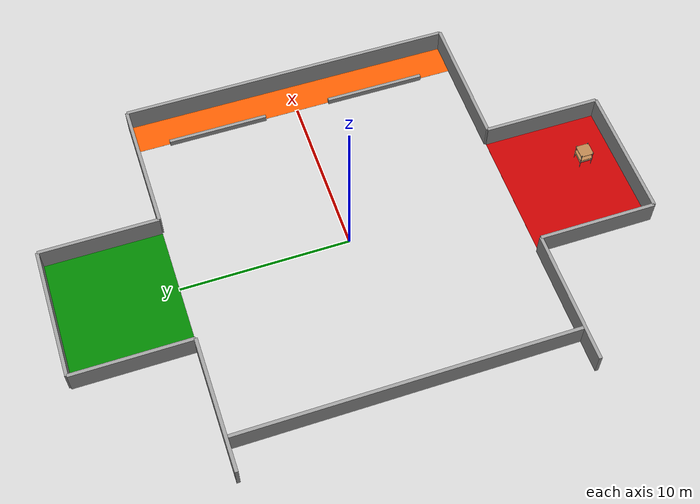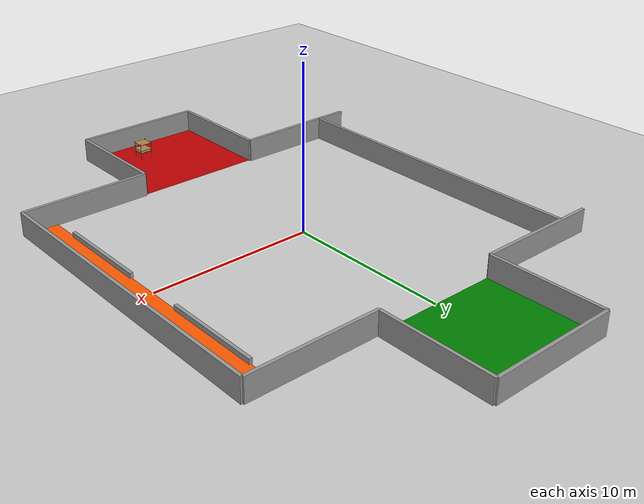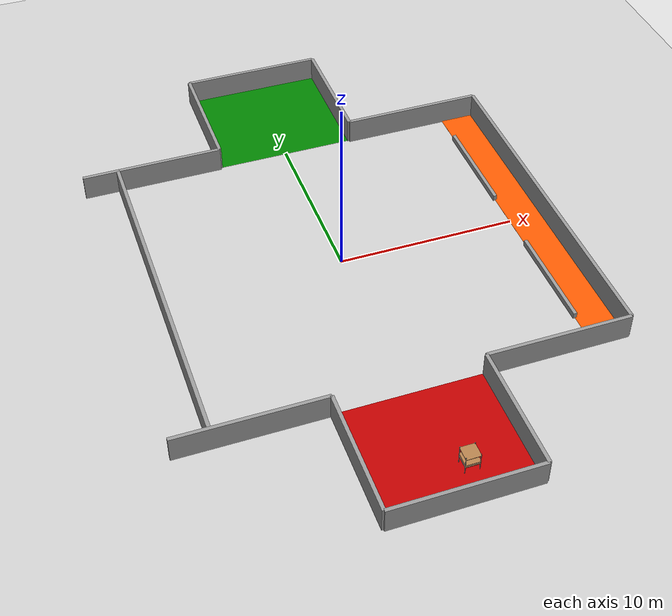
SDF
<sdf version="1.6">
 <world name="default">
  <include><uri>model://ground_plane</uri></include>
  <include><uri>model://sun</uri></include>
  <scene><shadows>false</shadows></scene>
  <physics type="ode">
   <real_time_update_rate>1000.0</real_time_update_rate>
   <max_step_size>0.001</max_step_size>
   <real_time_factor>1</real_time_factor>
   <ode>
    <solver>
     <type>quick</type>
     <iters>150</iters>
     <precon_iters>0</precon_iters>
     <sor>1.400000</sor>
     <use_dynamic_moi_rescaling>1</use_dynamic_moi_rescaling>
    </solver>
    <constraints>
     <cfm>0.00001</cfm>
     <erp>0.2</erp>
     <contact_max_correcting_vel>2000.000000</contact_max_correcting_vel>
     <contact_surface_layer>0.01000</contact_surface_layer>
    </constraints>
   </ode>
  </physics>
  <include>
   <uri>model://warehouse_pallet_small</uri>
   <name>warehouse_pallet_small_0</name>
   <pose>1 -15 0 0 0 0</pose>
  </include>
  <include><name>warehouse_walls</name><uri>model://warehouse_walls</uri></include>
 </world>
</sdf>

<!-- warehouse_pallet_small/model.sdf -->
<sdf version='1.7'>
  <model name='warehouse_pallet'>
    <link name='warehouse_pallet::link'>
      <pose>0 0 -0 0 -0 1.57</pose>
      <self_collide>0</self_collide>
      <inertial>
        <pose>0 0 0 0 -0 0</pose>
        <inertia>
          <ixx>0.0267042</ixx>
          <ixy>0</ixy>
          <ixz>0</ixz>
          <iyy>0.0937875</iyy>
          <iyz>0</iyz>
          <izz>0.120417</izz>
        </inertia>
        <mass>0.1</mass>
      </inertial>
      <enable_wind>0</enable_wind>
      <kinematic>0</kinematic>
      <gravity>1</gravity>
      <visual name='holding1_visual'>
        <pose>0 0.39 0.45 0 -0 0</pose>
        <geometry>
          <box>
            <size>0.8 0.02 0.05</size>
          </box>
        </geometry>
        <material>
          <script>
            <uri>file://media/materials/scripts/gazebo.material</uri>
            <name>Gazebo/Grey</name>
          </script>
          <shader type='pixel'>
            <normal_map>__default__</normal_map>
          </shader>
          <ambient>0.3 0.3 0.3 1</ambient>
          <diffuse>0.7 0.7 0.7 1</diffuse>
          <specular>0.01 0.01 0.01 1</specular>
          <emissive>0 0 0 1</emissive>
        </material>
        <transparency>0</transparency>
        <cast_shadows>1</cast_shadows>
      </visual>
      <visual name='front_left_leg'>
        <pose>0.35 0.38 0.5 0 -0 0</pose>
        <geometry>
          <cylinder>
            <radius>0.02</radius>
            <length>1.2</length>
          </cylinder>
        </geometry>
        <material>
          <script>
            <uri>file://media/materials/scripts/gazebo.material</uri>
            <name>Gazebo/Grey</name>
          </script>
          <shader type='pixel'>
            <normal_map>__default__</normal_map>
          </shader>
          <ambient>0.3 0.3 0.3 1</ambient>
          <diffuse>0.7 0.7 0.7 1</diffuse>
          <specular>0.01 0.01 0.01 1</specular>
          <emissive>0 0 0 1</emissive>
        </material>
        <transparency>0</transparency>
        <cast_shadows>1</cast_shadows>
      </visual>
      <visual name='front_right_leg'>
        <pose>0.35 -0.38 0.5 0 -0 0</pose>
        <geometry>
          <cylinder>
            <radius>0.02</radius>
            <length>1.2</length>
          </cylinder>
        </geometry>
        <material>
          <script>
            <uri>file://media/materials/scripts/gazebo.material</uri>
            <name>Gazebo/Grey</name>
          </script>
          <shader type='pixel'>
            <normal_map>__default__</normal_map>
          </shader>
          <ambient>0.3 0.3 0.3 1</ambient>
          <diffuse>0.7 0.7 0.7 1</diffuse>
          <specular>0.01 0.01 0.01 1</specular>
          <emissive>0 0 0 1</emissive>
        </material>
        <transparency>0</transparency>
        <cast_shadows>1</cast_shadows>
      </visual>
      <visual name='back_right_leg'>
        <pose>-0.35 -0.38 0.5 0 -0 0</pose>
        <geometry>
          <cylinder>
            <radius>0.02</radius>
            <length>1.2</length>
          </cylinder>
        </geometry>
        <material>
          <script>
            <uri>file://media/materials/scripts/gazebo.material</uri>
            <name>Gazebo/Grey</name>
          </script>
          <shader type='pixel'>
            <normal_map>__default__</normal_map>
          </shader>
          <ambient>0.3 0.3 0.3 1</ambient>
          <diffuse>0.7 0.7 0.7 1</diffuse>
          <specular>0.01 0.01 0.01 1</specular>
          <emissive>0 0 0 1</emissive>
        </material>
        <transparency>0</transparency>
        <cast_shadows>1</cast_shadows>
      </visual>
      <visual name='back_left_leg'>
        <pose>-0.35 0.38 0.5 0 -0 0</pose>
        <geometry>
          <cylinder>
            <radius>0.02</radius>
            <length>1.2</length>
          </cylinder>
        </geometry>
        <material>
          <script>
            <uri>file://media/materials/scripts/gazebo.material</uri>
            <name>Gazebo/Grey</name>
          </script>
          <shader type='pixel'>
            <normal_map>__default__</normal_map>
          </shader>
          <ambient>0.3 0.3 0.3 1</ambient>
          <diffuse>0.7 0.7 0.7 1</diffuse>
          <specular>0.01 0.01 0.01 1</specular>
          <emissive>0 0 0 1</emissive>
        </material>
        <transparency>0</transparency>
        <cast_shadows>1</cast_shadows>
      </visual>
      <visual name='visual1'>
        <pose>0 0 0.45 0 -0 0</pose>
        <geometry>
          <box>
            <size>0.8 0.8 0.03</size>
          </box>
        </geometry>
        <material>
          <script>
            <uri>file://media/materials/scripts/gazebo.material</uri>
            <name>Gazebo/Wood</name>
          </script>
          <shader type='pixel'>
            <normal_map>__default__</normal_map>
          </shader>
          <ambient>1 1 1 1</ambient>
          <diffuse>1 1 1 1</diffuse>
          <specular>0.2 0.2 0.2 1</specular>
          <emissive>0 0 0 1</emissive>
        </material>
        <transparency>0</transparency>
        <cast_shadows>1</cast_shadows>
      </visual>
      <visual name='holding2_visual'>
        <pose>0 -0.39 0.45 0 -0 0</pose>
        <geometry>
          <box>
            <size>0.4 0.02 0.05</size>
          </box>
        </geometry>
        <material>
          <script>
            <uri>file://media/materials/scripts/gazebo.material</uri>
            <name>Gazebo/Grey</name>
          </script>
          <shader type='pixel'>
            <normal_map>__default__</normal_map>
          </shader>
          <ambient>0.3 0.3 0.3 1</ambient>
          <diffuse>0.7 0.7 0.7 1</diffuse>
          <specular>0.01 0.01 0.01 1</specular>
          <emissive>0 0 0 1</emissive>
        </material>
        <transparency>0</transparency>
        <cast_shadows>1</cast_shadows>
      </visual>
      <visual name='holding3_visual'>
        <pose>0.36 0 0.45 0 -0 1.57</pose>
        <geometry>
          <box>
            <size>0.4 0.02 0.05</size>
          </box>
        </geometry>
        <material>
          <script>
            <uri>file://media/materials/scripts/gazebo.material</uri>
            <name>Gazebo/Grey</name>
          </script>
          <shader type='pixel'>
            <normal_map>__default__</normal_map>
          </shader>
          <ambient>0.3 0.3 0.3 1</ambient>
          <diffuse>0.7 0.7 0.7 1</diffuse>
          <specular>0.01 0.01 0.01 1</specular>
          <emissive>0 0 0 1</emissive>
        </material>
        <transparency>0</transparency>
        <cast_shadows>1</cast_shadows>
      </visual>
      <visual name='holding4_visual'>
        <pose>-0.36 0 0.45 0 -0 1.57</pose>
        <geometry>
          <box>
            <size>0.8 0.02 0.05</size>
          </box>
        </geometry>
        <material>
          <script>
            <uri>file://media/materials/scripts/gazebo.material</uri>
            <name>Gazebo/Grey</name>
          </script>
          <shader type='pixel'>
            <normal_map>__default__</normal_map>
          </shader>
          <ambient>0.3 0.3 0.3 1</ambient>
          <diffuse>0.7 0.7 0.7 1</diffuse>
          <specular>0.01 0.01 0.01 1</specular>
          <emissive>0 0 0 1</emissive>
        </material>
        <transparency>0</transparency>
        <cast_shadows>1</cast_shadows>
      </visual>
      <visual name='visual2'>
        <pose>0 0 0.6 0 -0 0</pose>
        <geometry>
          <box>
            <size>0.8 0.8 0.03</size>
          </box>
        </geometry>
        <material>
          <script>
            <uri>file://media/materials/scripts/gazebo.material</uri>
            <name>Gazebo/Wood</name>
          </script>
          <shader type='pixel'>
            <normal_map>__default__</normal_map>
          </shader>
          <ambient>1 1 1 1</ambient>
          <diffuse>1 1 1 1</diffuse>
          <specular>0.2 0.2 0.2 1</specular>
          <emissive>0 0 0 1</emissive>
        </material>
        <transparency>0</transparency>
        <cast_shadows>1</cast_shadows>
      </visual>
      <visual name='visual3'>
        <pose>0 0 1 0 -0 0</pose>
        <geometry>
          <box>
            <size>0.8 0.8 0.03</size>
          </box>
        </geometry>
        <material>
          <script>
            <uri>file://media/materials/scripts/gazebo.material</uri>
            <name>Gazebo/Wood</name>
          </script>
          <shader type='pixel'>
            <normal_map>__default__</normal_map>
          </shader>
          <ambient>1 1 1 1</ambient>
          <diffuse>1 1 1 1</diffuse>
          <specular>0.2 0.2 0.2 1</specular>
          <emissive>0 0 0 1</emissive>
        </material>
        <transparency>0</transparency>
        <cast_shadows>1</cast_shadows>
      </visual>
      <collision name='surface1'>
        <laser_retro>0</laser_retro>
        <max_contacts>10</max_contacts>
        <pose>0 0 0.45 0 -0 0</pose>
        <geometry>
          <box>
            <size>0.8 0.8 0.03</size>
          </box>
        </geometry>
        <surface>
          <friction>
            <ode>
              <mu>20</mu>
              <mu2>20</mu2>
              <fdir1>0 0 0</fdir1>
              <slip1>0</slip1>
              <slip2>0</slip2>
            </ode>
            <torsional>
              <coefficient>1</coefficient>
              <patch_radius>0</patch_radius>
              <surface_radius>0</surface_radius>
              <use_patch_radius>1</use_patch_radius>
              <ode>
                <slip>0</slip>
              </ode>
            </torsional>
          </friction>
          <bounce>
            <restitution_coefficient>0</restitution_coefficient>
            <threshold>1e+06</threshold>
          </bounce>
          <contact>
            <collide_without_contact>0</collide_without_contact>
            <collide_without_contact_bitmask>1</collide_without_contact_bitmask>
            <collide_bitmask>1</collide_bitmask>
            <ode>
              <soft_cfm>0</soft_cfm>
              <soft_erp>0.2</soft_erp>
              <kp>1e+13</kp>
              <kd>1</kd>
              <max_vel>0.01</max_vel>
              <min_depth>0</min_depth>
            </ode>
            <bullet>
              <split_impulse>1</split_impulse>
              <split_impulse_penetration_threshold>-0.01</split_impulse_penetration_threshold>
              <soft_cfm>0</soft_cfm>
              <soft_erp>0.2</soft_erp>
              <kp>1e+13</kp>
              <kd>1</kd>
            </bullet>
          </contact>
        </surface>
      </collision>
      <collision name='holding1_collision'>
        <laser_retro>0</laser_retro>
        <max_contacts>10</max_contacts>
        <pose>0 0.39 0.45 0 -0 0</pose>
        <geometry>
          <box>
            <size>0.8 0.02 0.05</size>
          </box>
        </geometry>
        <surface>
          <friction>
            <ode>
              <mu>1e+09</mu>
              <mu2>1e+09</mu2>
              <fdir1>0 0 0</fdir1>
              <slip1>0</slip1>
              <slip2>0</slip2>
            </ode>
            <torsional>
              <coefficient>1</coefficient>
              <patch_radius>0</patch_radius>
              <surface_radius>0</surface_radius>
              <use_patch_radius>1</use_patch_radius>
              <ode>
                <slip>0</slip>
              </ode>
            </torsional>
          </friction>
          <bounce>
            <restitution_coefficient>0</restitution_coefficient>
            <threshold>1e+06</threshold>
          </bounce>
          <contact>
            <collide_without_contact>0</collide_without_contact>
            <collide_without_contact_bitmask>1</collide_without_contact_bitmask>
            <collide_bitmask>1</collide_bitmask>
            <ode>
              <soft_cfm>0</soft_cfm>
              <soft_erp>0.2</soft_erp>
              <kp>1e+13</kp>
              <kd>1</kd>
              <max_vel>0.01</max_vel>
              <min_depth>0</min_depth>
            </ode>
            <bullet>
              <split_impulse>1</split_impulse>
              <split_impulse_penetration_threshold>-0.01</split_impulse_penetration_threshold>
              <soft_cfm>0</soft_cfm>
              <soft_erp>0.2</soft_erp>
              <kp>1e+13</kp>
              <kd>1</kd>
            </bullet>
          </contact>
        </surface>
      </collision>
      <collision name='holding2_collision'>
        <laser_retro>0</laser_retro>
        <max_contacts>10</max_contacts>
        <pose>0 -0.39 0.45 0 -0 0</pose>
        <geometry>
          <box>
            <size>0.8 0.02 0.05</size>
          </box>
        </geometry>
        <surface>
          <friction>
            <ode>
              <mu>1e+09</mu>
              <mu2>1e+09</mu2>
              <fdir1>0 0 0</fdir1>
              <slip1>0</slip1>
              <slip2>0</slip2>
            </ode>
            <torsional>
              <coefficient>1</coefficient>
              <patch_radius>0</patch_radius>
              <surface_radius>0</surface_radius>
              <use_patch_radius>1</use_patch_radius>
              <ode>
                <slip>0</slip>
              </ode>
            </torsional>
          </friction>
          <bounce>
            <restitution_coefficient>0</restitution_coefficient>
            <threshold>1e+06</threshold>
          </bounce>
          <contact>
            <collide_without_contact>0</collide_without_contact>
            <collide_without_contact_bitmask>1</collide_without_contact_bitmask>
            <collide_bitmask>1</collide_bitmask>
            <ode>
              <soft_cfm>0</soft_cfm>
              <soft_erp>0.2</soft_erp>
              <kp>1e+13</kp>
              <kd>1</kd>
              <max_vel>0.01</max_vel>
              <min_depth>0</min_depth>
            </ode>
            <bullet>
              <split_impulse>1</split_impulse>
              <split_impulse_penetration_threshold>-0.01</split_impulse_penetration_threshold>
              <soft_cfm>0</soft_cfm>
              <soft_erp>0.2</soft_erp>
              <kp>1e+13</kp>
              <kd>1</kd>
            </bullet>
          </contact>
        </surface>
      </collision>
      <collision name='holding3_collision'>
        <laser_retro>0</laser_retro>
        <max_contacts>10</max_contacts>
        <pose>0.36 0 0.45 0 -0 1.57</pose>
        <geometry>
          <box>
            <size>0.8 0.02 0.05</size>
          </box>
        </geometry>
        <surface>
          <friction>
            <ode>
              <mu>1e+09</mu>
              <mu2>1e+09</mu2>
              <fdir1>0 0 0</fdir1>
              <slip1>0</slip1>
              <slip2>0</slip2>
            </ode>
            <torsional>
              <coefficient>1</coefficient>
              <patch_radius>0</patch_radius>
              <surface_radius>0</surface_radius>
              <use_patch_radius>1</use_patch_radius>
              <ode>
                <slip>0</slip>
              </ode>
            </torsional>
          </friction>
          <bounce>
            <restitution_coefficient>0</restitution_coefficient>
            <threshold>1e+06</threshold>
          </bounce>
          <contact>
            <collide_without_contact>0</collide_without_contact>
            <collide_without_contact_bitmask>1</collide_without_contact_bitmask>
            <collide_bitmask>1</collide_bitmask>
            <ode>
              <soft_cfm>0</soft_cfm>
              <soft_erp>0.2</soft_erp>
              <kp>1e+13</kp>
              <kd>1</kd>
              <max_vel>0.01</max_vel>
              <min_depth>0</min_depth>
            </ode>
            <bullet>
              <split_impulse>1</split_impulse>
              <split_impulse_penetration_threshold>-0.01</split_impulse_penetration_threshold>
              <soft_cfm>0</soft_cfm>
              <soft_erp>0.2</soft_erp>
              <kp>1e+13</kp>
              <kd>1</kd>
            </bullet>
          </contact>
        </surface>
      </collision>
      <collision name='holding4_collision'>
        <laser_retro>0</laser_retro>
        <max_contacts>10</max_contacts>
        <pose>-0.36 0 0.45 0 -0 1.57</pose>
        <geometry>
          <box>
            <size>0.8 0.02 0.05</size>
          </box>
        </geometry>
        <surface>
          <friction>
            <ode>
              <mu>1e+09</mu>
              <mu2>1e+09</mu2>
              <fdir1>0 0 0</fdir1>
              <slip1>0</slip1>
              <slip2>0</slip2>
            </ode>
            <torsional>
              <coefficient>1</coefficient>
              <patch_radius>0</patch_radius>
              <surface_radius>0</surface_radius>
              <use_patch_radius>1</use_patch_radius>
              <ode>
                <slip>0</slip>
              </ode>
            </torsional>
          </friction>
          <bounce>
            <restitution_coefficient>0</restitution_coefficient>
            <threshold>1e+06</threshold>
          </bounce>
          <contact>
            <collide_without_contact>0</collide_without_contact>
            <collide_without_contact_bitmask>1</collide_without_contact_bitmask>
            <collide_bitmask>1</collide_bitmask>
            <ode>
              <soft_cfm>0</soft_cfm>
              <soft_erp>0.2</soft_erp>
              <kp>1e+13</kp>
              <kd>1</kd>
              <max_vel>0.01</max_vel>
              <min_depth>0</min_depth>
            </ode>
            <bullet>
              <split_impulse>1</split_impulse>
              <split_impulse_penetration_threshold>-0.01</split_impulse_penetration_threshold>
              <soft_cfm>0</soft_cfm>
              <soft_erp>0.2</soft_erp>
              <kp>1e+13</kp>
              <kd>1</kd>
            </bullet>
          </contact>
        </surface>
      </collision>
      <collision name='surface3'>
        <laser_retro>0</laser_retro>
        <max_contacts>10</max_contacts>
        <pose>0 0 1 0 -0 0</pose>
        <geometry>
          <box>
            <size>0.8 0.8 0.03</size>
          </box>
        </geometry>
        <surface>
          <friction>
            <ode>
              <mu>2.5</mu>
              <mu2>2.5</mu2>
              <fdir1>0 0 0</fdir1>
              <slip1>0</slip1>
              <slip2>0</slip2>
            </ode>
            <torsional>
              <coefficient>1</coefficient>
              <patch_radius>0</patch_radius>
              <surface_radius>0</surface_radius>
              <use_patch_radius>1</use_patch_radius>
              <ode>
                <slip>0</slip>
              </ode>
            </torsional>
          </friction>
          <bounce>
            <restitution_coefficient>0</restitution_coefficient>
            <threshold>1e+06</threshold>
          </bounce>
          <contact>
            <collide_without_contact>0</collide_without_contact>
            <collide_without_contact_bitmask>1</collide_without_contact_bitmask>
            <collide_bitmask>1</collide_bitmask>
            <ode>
              <soft_cfm>0</soft_cfm>
              <soft_erp>0.2</soft_erp>
              <kp>1e+13</kp>
              <kd>1</kd>
              <max_vel>0.01</max_vel>
              <min_depth>0</min_depth>
            </ode>
            <bullet>
              <split_impulse>1</split_impulse>
              <split_impulse_penetration_threshold>-0.01</split_impulse_penetration_threshold>
              <soft_cfm>0</soft_cfm>
              <soft_erp>0.2</soft_erp>
              <kp>1e+13</kp>
              <kd>1</kd>
            </bullet>
          </contact>
        </surface>
      </collision>
      <collision name='surface2'>
        <laser_retro>0</laser_retro>
        <max_contacts>10</max_contacts>
        <pose>0 0 0.6 0 -0 0</pose>
        <geometry>
          <box>
            <size>0.8 0.8 0.03</size>
          </box>
        </geometry>
        <surface>
          <friction>
            <ode>
              <mu>2.5</mu>
              <mu2>2.5</mu2>
              <fdir1>0 0 0</fdir1>
              <slip1>0</slip1>
              <slip2>0</slip2>
            </ode>
            <torsional>
              <coefficient>1</coefficient>
              <patch_radius>0</patch_radius>
              <surface_radius>0</surface_radius>
              <use_patch_radius>1</use_patch_radius>
              <ode>
                <slip>0</slip>
              </ode>
            </torsional>
          </friction>
          <bounce>
            <restitution_coefficient>0</restitution_coefficient>
            <threshold>1e+06</threshold>
          </bounce>
          <contact>
            <collide_without_contact>0</collide_without_contact>
            <collide_without_contact_bitmask>1</collide_without_contact_bitmask>
            <collide_bitmask>1</collide_bitmask>
            <ode>
              <soft_cfm>0</soft_cfm>
              <soft_erp>0.2</soft_erp>
              <kp>1e+13</kp>
              <kd>1</kd>
              <max_vel>0.01</max_vel>
              <min_depth>0</min_depth>
            </ode>
            <bullet>
              <split_impulse>1</split_impulse>
              <split_impulse_penetration_threshold>-0.01</split_impulse_penetration_threshold>
              <soft_cfm>0</soft_cfm>
              <soft_erp>0.2</soft_erp>
              <kp>1e+13</kp>
              <kd>1</kd>
            </bullet>
          </contact>
        </surface>
      </collision>
      <collision name='front_right_leg'>
        <laser_retro>0</laser_retro>
        <max_contacts>10</max_contacts>
        <pose>0.35 -0.38 0.5 0 -0 0</pose>
        <geometry>
          <cylinder>
            <radius>0.02</radius>
            <length>1</length>
          </cylinder>
        </geometry>
        <surface>
          <friction>
            <ode>
              <mu>0.1</mu>
              <mu2>0.1</mu2>
              <fdir1>0 0 0</fdir1>
              <slip1>0</slip1>
              <slip2>0</slip2>
            </ode>
            <torsional>
              <coefficient>1</coefficient>
              <patch_radius>0</patch_radius>
              <surface_radius>0</surface_radius>
              <use_patch_radius>1</use_patch_radius>
              <ode>
                <slip>0</slip>
              </ode>
            </torsional>
          </friction>
          <bounce>
            <restitution_coefficient>0</restitution_coefficient>
            <threshold>1e+06</threshold>
          </bounce>
          <contact>
            <collide_without_contact>0</collide_without_contact>
            <collide_without_contact_bitmask>1</collide_without_contact_bitmask>
            <collide_bitmask>1</collide_bitmask>
            <ode>
              <soft_cfm>0</soft_cfm>
              <soft_erp>0.2</soft_erp>
              <kp>1e+13</kp>
              <kd>1</kd>
              <max_vel>0.01</max_vel>
              <min_depth>0</min_depth>
            </ode>
            <bullet>
              <split_impulse>1</split_impulse>
              <split_impulse_penetration_threshold>-0.01</split_impulse_penetration_threshold>
              <soft_cfm>0</soft_cfm>
              <soft_erp>0.2</soft_erp>
              <kp>1e+13</kp>
              <kd>1</kd>
            </bullet>
          </contact>
        </surface>
      </collision>
      <collision name='back_right_leg'>
        <laser_retro>0</laser_retro>
        <max_contacts>10</max_contacts>
        <pose>-0.35 -0.38 0.5 0 -0 0</pose>
        <geometry>
          <cylinder>
            <radius>0.02</radius>
            <length>1.2</length>
          </cylinder>
        </geometry>
        <surface>
          <friction>
            <ode>
              <mu>0.1</mu>
              <mu2>0.1</mu2>
              <fdir1>0 0 0</fdir1>
              <slip1>0</slip1>
              <slip2>0</slip2>
            </ode>
            <torsional>
              <coefficient>1</coefficient>
              <patch_radius>0</patch_radius>
              <surface_radius>0</surface_radius>
              <use_patch_radius>1</use_patch_radius>
              <ode>
                <slip>0</slip>
              </ode>
            </torsional>
          </friction>
          <bounce>
            <restitution_coefficient>0</restitution_coefficient>
            <threshold>1e+06</threshold>
          </bounce>
          <contact>
            <collide_without_contact>0</collide_without_contact>
            <collide_without_contact_bitmask>1</collide_without_contact_bitmask>
            <collide_bitmask>1</collide_bitmask>
            <ode>
              <soft_cfm>0</soft_cfm>
              <soft_erp>0.2</soft_erp>
              <kp>1e+13</kp>
              <kd>1</kd>
              <max_vel>0.01</max_vel>
              <min_depth>0</min_depth>
            </ode>
            <bullet>
              <split_impulse>1</split_impulse>
              <split_impulse_penetration_threshold>-0.01</split_impulse_penetration_threshold>
              <soft_cfm>0</soft_cfm>
              <soft_erp>0.2</soft_erp>
              <kp>1e+13</kp>
              <kd>1</kd>
            </bullet>
          </contact>
        </surface>
      </collision>
      <collision name='front_left_leg'>
        <laser_retro>0</laser_retro>
        <max_contacts>10</max_contacts>
        <pose>0.35 0.38 0.5 0 -0 0</pose>
        <geometry>
          <cylinder>
            <radius>0.02</radius>
            <length>1.2</length>
          </cylinder>
        </geometry>
        <surface>
          <friction>
            <ode>
              <mu>0.1</mu>
              <mu2>0.1</mu2>
              <fdir1>0 0 0</fdir1>
              <slip1>0</slip1>
              <slip2>0</slip2>
            </ode>
            <torsional>
              <coefficient>1</coefficient>
              <patch_radius>0</patch_radius>
              <surface_radius>0</surface_radius>
              <use_patch_radius>1</use_patch_radius>
              <ode>
                <slip>0</slip>
              </ode>
            </torsional>
          </friction>
          <bounce>
            <restitution_coefficient>0</restitution_coefficient>
            <threshold>1e+06</threshold>
          </bounce>
          <contact>
            <collide_without_contact>0</collide_without_contact>
            <collide_without_contact_bitmask>1</collide_without_contact_bitmask>
            <collide_bitmask>1</collide_bitmask>
            <ode>
              <soft_cfm>0</soft_cfm>
              <soft_erp>0.2</soft_erp>
              <kp>1e+13</kp>
              <kd>1</kd>
              <max_vel>0.01</max_vel>
              <min_depth>0</min_depth>
            </ode>
            <bullet>
              <split_impulse>1</split_impulse>
              <split_impulse_penetration_threshold>-0.01</split_impulse_penetration_threshold>
              <soft_cfm>0</soft_cfm>
              <soft_erp>0.2</soft_erp>
              <kp>1e+13</kp>
              <kd>1</kd>
            </bullet>
          </contact>
        </surface>
      </collision>
      <collision name='back_left_leg'>
        <laser_retro>0</laser_retro>
        <max_contacts>10</max_contacts>
        <pose>-0.35 0.38 0.5 0 -0 0</pose>
        <geometry>
          <cylinder>
            <radius>0.02</radius>
            <length>1.2</length>
          </cylinder>
        </geometry>
        <surface>
          <friction>
            <ode>
              <mu>0.1</mu>
              <mu2>0.1</mu2>
              <fdir1>0 0 0</fdir1>
              <slip1>0</slip1>
              <slip2>0</slip2>
            </ode>
            <torsional>
              <coefficient>1</coefficient>
              <patch_radius>0</patch_radius>
              <surface_radius>0</surface_radius>
              <use_patch_radius>1</use_patch_radius>
              <ode>
                <slip>0</slip>
              </ode>
            </torsional>
          </friction>
          <bounce>
            <restitution_coefficient>0</restitution_coefficient>
            <threshold>1e+06</threshold>
          </bounce>
          <contact>
            <collide_without_contact>0</collide_without_contact>
            <collide_without_contact_bitmask>1</collide_without_contact_bitmask>
            <collide_bitmask>1</collide_bitmask>
            <ode>
              <soft_cfm>0</soft_cfm>
              <soft_erp>0.2</soft_erp>
              <kp>1e+13</kp>
              <kd>1</kd>
              <max_vel>0.01</max_vel>
              <min_depth>0</min_depth>
            </ode>
            <bullet>
              <split_impulse>1</split_impulse>
              <split_impulse_penetration_threshold>-0.01</split_impulse_penetration_threshold>
              <soft_cfm>0</soft_cfm>
              <soft_erp>0.2</soft_erp>
              <kp>1e+13</kp>
              <kd>1</kd>
            </bullet>
          </contact>
        </surface>
      </collision>
    </link>
    <static>0</static>
    <allow_auto_disable>1</allow_auto_disable>
  </model>
</sdf>

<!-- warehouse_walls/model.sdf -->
<sdf version="1.5">
  <model name="warehouse_walls">
    <static>true</static>

<!-- Wall 1 -->
    <link name="wall1_link">
      <name>wall1_link</name>
      <pose>-10 0 0 0 0 1.57</pose>
      <collision name="collision">
        <geometry>
          <box>
            <size>20 0.2 2.8</size>
          </box>
        </geometry>
      </collision>
      <visual name="wall1_visual">
        <cast_shadows>false</cast_shadows>
        <geometry>
          <box>
            <size>20 0.2 2.8</size>
          </box>
        </geometry>
        <material>
          <script>
            <uri>model://grey_wall/materials/scripts</uri>
            <uri>model://grey_wall/materials/textures</uri>
            <name>vrc/grey_wall</name>
          </script>
        </material>
      </visual>
    </link>

<!-- Wall 2 -->
    <link name="wall2_link2">
      <name>wall2_link2</name>
      <pose>8 -10 0 0 0 0</pose>
      <collision name="wall2_collision2">
        <geometry>
          <box>
            <size>8 0.2 2.8</size>
          </box>
        </geometry>
      </collision>
      <visual name="wall2_visual2">
        <cast_shadows>false</cast_shadows>
        <geometry>
          <box>
            <size>8 0.2 2.8</size>
          </box>
        </geometry>
        <material>
          <script>
            <uri>model://grey_wall/materials/scripts</uri>
            <uri>model://grey_wall/materials/textures</uri>
            <name>vrc/grey_wall</name>
          </script>
        </material>
      </visual>
    </link>

    <link name="wall2_link3">
      <name>wall2_link3</name>
      <pose>4 -13.5 0 0 0 1.57</pose>
      <collision name="wall2_collision3">
        <geometry>
          <box>
            <size>7 0.2 2.8</size>
          </box>
        </geometry>
      </collision>
      <visual name="wall2_visual3">
        <cast_shadows>false</cast_shadows>
        <geometry>
          <box>
            <size>7 0.2 2.8</size>
          </box>
        </geometry>
        <material>
          <script>
            <uri>model://grey_wall/materials/scripts</uri>
            <uri>model://grey_wall/materials/textures</uri>
            <name>vrc/grey_wall</name>
          </script>
        </material>
      </visual>
    </link>

    <link name="wall2_link4">
      <name>wall2_link4</name>
      <pose>0 -17 0 0 0 0</pose>
      <collision name="wall2_collision4">
        <geometry>
          <box>
            <size>8 0.2 2.8</size>
          </box>
        </geometry>
      </collision>
      <visual name="wall2_visual4">
        <cast_shadows>false</cast_shadows>
        <geometry>
          <box>
            <size>8 0.2 2.8</size>
          </box>
        </geometry>
        <material>
          <script>
            <uri>model://grey_wall/materials/scripts</uri>
            <uri>model://grey_wall/materials/textures</uri>
            <name>vrc/grey_wall</name>
          </script>
        </material>
      </visual>
    </link>

    <link name="wall2_link5">
      <name>wall2_link5</name>
      <pose>-4 -13.5 0 0 0 1.57</pose>
      <collision name="wall2_collision5">
        <geometry>
          <box>
            <size>7 0.2 2.8</size>
          </box>
        </geometry>
      </collision>
      <visual name="wall2_visual5">
        <cast_shadows>false</cast_shadows>
        <geometry>
          <box>
            <size>7 0.2 2.8</size>
          </box>
        </geometry>
        <material>
          <script>
            <uri>model://grey_wall/materials/scripts</uri>
            <uri>model://grey_wall/materials/textures</uri>
            <name>vrc/grey_wall</name>
          </script>
        </material>
      </visual>
    </link>

    <link name="wall2_link6">
      <name>wall2_link6</name>
      <pose>-8 -10 0 0 0 0</pose>
      <collision name="wall2_collision6">
        <geometry>
          <box>
            <size>8 0.2 2.8</size>
          </box>
        </geometry>
      </collision>
      <visual name="wall2_visual6">
        <cast_shadows>false</cast_shadows>
        <geometry>
          <box>
            <size>8 0.2 2.8</size>
          </box>
        </geometry>
        <material>
          <script>
            <uri>model://grey_wall/materials/scripts</uri>
            <uri>model://grey_wall/materials/textures</uri>
            <name>vrc/grey_wall</name>
          </script>
        </material>
      </visual>
    </link>

<!--Lets also add Output Area Visual to be green color-->

    <link name="output_area_0">
      <name>output_area_0</name>
      <pose>0 13.5 0 0 0 0</pose>
	  <visual name='visual_output_area_0'>
		<cast_shadows>false</cast_shadows>
		<geometry>
		  <plane>
		    <normal>0 0 1</normal>
		    <size>8 7</size>
		  </plane>
		</geometry>
	  <material>
	    <ambient>0 0.5 0 1</ambient>
	    <diffuse>0 0.5 0 1</diffuse>
	    <specular>0 0 0 1</specular>
	    <emissive>0 0 0 0</emissive>
	  </material>
	  </visual>
    </link>

<!-- Wall 3 -->
    <link name="wall3_link2">
      <name>wall3_link2</name>
      <pose>8 10 0 0 0 0</pose>
      <collision name="wall3_collision2">
        <geometry>
          <box>
            <size>8 0.2 2.8</size>
          </box>
        </geometry>
      </collision>
      <visual name="wall3_visual2">
        <cast_shadows>false</cast_shadows>
        <geometry>
          <box>
            <size>8 0.2 2.8</size>
          </box>
        </geometry>
        <material>
          <script>
            <uri>model://grey_wall/materials/scripts</uri>
            <uri>model://grey_wall/materials/textures</uri>
            <name>vrc/grey_wall</name>
          </script>
        </material>
      </visual>
    </link>

    <link name="wall3_link3">
      <name>wall3_link3</name>
      <pose>4 13.5 0 0 0 1.57</pose>
      <collision name="wall3_collision3">
        <geometry>
          <box>
            <size>7 0.2 2.8</size>
          </box>
        </geometry>
      </collision>
      <visual name="wall3_visual3">
        <cast_shadows>false</cast_shadows>
        <geometry>
          <box>
            <size>7 0.2 2.8</size>
          </box>
        </geometry>
        <material>
          <script>
            <uri>model://grey_wall/materials/scripts</uri>
            <uri>model://grey_wall/materials/textures</uri>
            <name>vrc/grey_wall</name>
          </script>
        </material>
      </visual>
    </link>

    <link name="wall3_link4">
      <name>wall3_link4</name>
      <pose>0 17 0 0 0 0</pose>
      <collision name="wall3_collision4">
        <geometry>
          <box>
            <size>8 0.2 2.8</size>
          </box>
        </geometry>
      </collision>
      <visual name="wall3_visual4">
        <cast_shadows>false</cast_shadows>
        <geometry>
          <box>
            <size>8 0.2 2.8</size>
          </box>
        </geometry>
        <material>
          <script>
            <uri>model://grey_wall/materials/scripts</uri>
            <uri>model://grey_wall/materials/textures</uri>
            <name>vrc/grey_wall</name>
          </script>
        </material>
      </visual>
    </link>

    <link name="wall3_link5">
      <name>wall3_link5</name>
      <pose>-4 13.5 0 0 0 1.57</pose>
      <collision name="wall3_collision5">
        <geometry>
          <box>
            <size>7 0.2 2.8</size>
          </box>
        </geometry>
      </collision>
      <visual name="wall3_visual5">
        <cast_shadows>false</cast_shadows>
        <geometry>
          <box>
            <size>7 0.2 2.8</size>
          </box>
        </geometry>
        <material>
          <script>
            <uri>model://grey_wall/materials/scripts</uri>
            <uri>model://grey_wall/materials/textures</uri>
            <name>vrc/grey_wall</name>
          </script>
        </material>
      </visual>
    </link>

    <link name="wall3_link6">
      <name>wall3_link6</name>
      <pose>-8 10 0 0 0 0</pose>
      <collision name="wall3_collision6">
        <geometry>
          <box>
            <size>8 0.2 2.8</size>
          </box>
        </geometry>
      </collision>
      <visual name="wall3_visual6">
        <cast_shadows>false</cast_shadows>
        <geometry>
          <box>
            <size>8 0.2 2.8</size>
          </box>
        </geometry>
        <material>
          <script>
            <uri>model://grey_wall/materials/scripts</uri>
            <uri>model://grey_wall/materials/textures</uri>
            <name>vrc/grey_wall</name>
          </script>
        </material>
      </visual>
    </link>

<!--Lets also add Input Area Visual to be Red color-->

    <link name="output_area_1">
      <name>output_area_1</name>
      <pose>0 -13.5 0 0 0 0</pose>
	  <visual name='visual_output_area_1'>
		<cast_shadows>false</cast_shadows>
		<geometry>
		  <plane>
		    <normal>0 0 1</normal>
		    <size>8 7</size>
		  </plane>
		</geometry>
	  <material>
	    <ambient>0.75 0 0 1</ambient>
	    <diffuse>0.75 0 0 1</diffuse>
	    <specular>0 0 0 1</specular>
	    <emissive>0 0 0 0</emissive>
	  </material>
	  </visual>
    </link>

<!-- Wall 4 -->
    <link name="wall4_link">
      <name>wall4_link4</name>
      <pose>12 0 0 0 0 1.57</pose>
      <collision name="wall4_collision">
        <geometry>
          <box>
            <size>20 0.2 2.8</size>
          </box>
        </geometry>
      </collision>
      <visual name="wall4_visual">
        <cast_shadows>false</cast_shadows>
        <geometry>
          <box>
            <size>20 0.2 2.8</size>
          </box>
        </geometry>
        <material>
          <script>
            <uri>model://grey_wall/materials/scripts</uri>
            <uri>model://grey_wall/materials/textures</uri>
            <name>vrc/grey_wall</name>
          </script>
        </material>
      </visual>
    </link>

<!-- Resting Area Walls -->
    <link name="wall5_link1">
      <name>wall5_link1</name>
      <pose>10 -5 0 0 0 1.57</pose>
      <collision name="wall5_collision1">
        <geometry>
          <box>
            <size>6 0.2 0.6</size>
          </box>
        </geometry>
      </collision>
      <visual name="wall5_visual1">
        <cast_shadows>false</cast_shadows>
        <geometry>
          <box>
            <size>6 0.2 0.6</size>
          </box>
        </geometry>
        <material>
          <script>
            <uri>model://grey_wall/materials/scripts</uri>
            <uri>model://grey_wall/materials/textures</uri>
            <name>vrc/grey_wall</name>
          </script>
        </material>
      </visual>
    </link>

    <link name="wall5_link2">
      <name>wall5_link2</name>
      <pose>10 5 0 0 0 1.57</pose>
      <collision name="wall5_collision2">
        <geometry>
          <box>
            <size>6 0.2 0.6</size>
          </box>
        </geometry>
      </collision>
      <visual name="wall5_visual2">
        <cast_shadows>false</cast_shadows>
        <geometry>
          <box>
            <size>6 0.2 0.6</size>
          </box>
        </geometry>
        <material>
          <script>
            <uri>model://grey_wall/materials/scripts</uri>
            <uri>model://grey_wall/materials/textures</uri>
            <name>vrc/grey_wall</name>
          </script>
        </material>
      </visual>
    </link>

<!--Lets also add Resting Area Visual to be a darker orange color-->

    <link name="resting_area">
      <name>resting_area_2</name>
      <pose>11 0 0 0 0 1.57</pose>
	  <visual name='visual_resting_area'>
		<cast_shadows>false</cast_shadows>
		<geometry>
		  <plane>
		    <normal>0 0 1</normal>
		    <size>20 2</size>
		  </plane>
		</geometry>
	  <material>
	    <ambient>1 0.35 0 1</ambient>
	    <diffuse>1 0.35 0 1</diffuse>
	    <specular>0 0 0 1</specular>
	    <emissive>0 0 0 0</emissive>
	  </material>
	  </visual>
    </link>

  </model>
</sdf>
